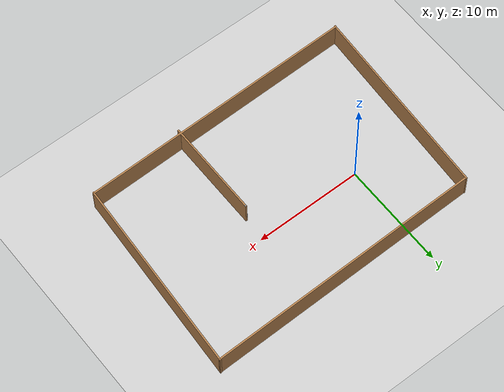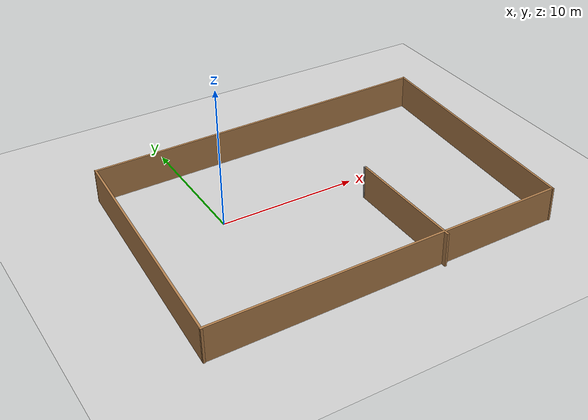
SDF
<sdf version="1.6">
 <world name="default">
  <light name="sun" type="directional">
   <pose>0 0 10 0 -0 0</pose>
   <diffuse>0.8 0.8 0.8 1</diffuse>
   <specular>0.2 0.2 0.2 1</specular>
   <attenuation>
    <range>1000</range>
    <constant>0.9</constant>
    <linear>0.01</linear>
    <quadratic>0.001</quadratic>
   </attenuation>
   <direction>-0.5 0.1 -0.9</direction>
  </light>
  <model name="ground_plane">
   <static>1</static>
   <link name="link">
    <collision name="collision">
     <geometry><plane><normal>0 0 1</normal><size>100 100</size></plane></geometry>
     <surface>
      <contact><collide_bitmask>65535</collide_bitmask></contact>
      <friction><ode><mu>100</mu><mu2>50</mu2></ode></friction>
     </surface>
    </collision>
    <visual name="visual">
     <cast_shadows>0</cast_shadows>
     <geometry><plane><normal>0 0 1</normal><size>100 100</size></plane></geometry>
     <material>
      <script><uri>file://media/materials/scripts/gazebo.material</uri><name>Gazebo/Grey</name></script>
     </material>
    </visual>
   </link>
  </model>
  <gravity>0 0 -9.8</gravity>
  <magnetic_field>6e-06 2.3e-05 -4.2e-05</magnetic_field>
  <atmosphere type="adiabatic"/>
  <physics name="default_physics" default="0" type="ode">
   <max_step_size>0.001</max_step_size>
   <real_time_factor>1</real_time_factor>
   <real_time_update_rate>1000</real_time_update_rate>
  </physics>
  <scene><ambient>0.4 0.4 0.4 1</ambient><background>0.7 0.7 0.7 1</background><shadows>1</shadows></scene>
  <audio><device>default</device></audio>
  <spherical_coordinates>
   <surface_model>EARTH_WGS84</surface_model>
   <latitude_deg>0</latitude_deg>
   <longitude_deg>0</longitude_deg>
   <elevation>0</elevation>
   <heading_deg>0</heading_deg>
  </spherical_coordinates>
  <model name="map">
   <pose>6.40174 -2.01071 0 0 -0 0</pose>
   <link name="Wall_10">
    <collision name="Wall_10_Collision">
     <geometry><box><size>9.25 0.15 2.5</size></box></geometry>
     <pose>0 0 1.25 0 -0 0</pose>
    </collision>
    <visual name="Wall_10_Visual">
     <pose>0 0 1.25 0 -0 0</pose>
     <geometry><box><size>9.25 0.15 2.5</size></box></geometry>
     <material>
      <script><uri>file://media/materials/scripts/gazebo.material</uri><name>Gazebo/Wood</name></script>
      <ambient>1 1 1 1</ambient>
     </material>
     <meta><layer>0</layer></meta>
    </visual>
    <pose>3.39738 -4.77834 0 0 -0 -1.5708</pose>
   </link>
   <link name="Wall_4">
    <collision name="Wall_4_Collision">
     <geometry><box><size>25.9665 0.15 2.5</size></box></geometry>
     <pose>0 0 1.25 0 -0 0</pose>
    </collision>
    <visual name="Wall_4_Visual">
     <pose>0 0 1.25 0 -0 0</pose>
     <geometry><box><size>25.9665 0.15 2.5</size></box></geometry>
     <material>
      <script><uri>file://media/materials/scripts/gazebo.material</uri><name>Gazebo/Wood</name></script>
      <ambient>1 1 1 1</ambient>
     </material>
     <meta><layer>0</layer></meta>
    </visual>
    <pose>0.482374 9.09967 0 0 -0 0.013826</pose>
   </link>
   <link name="Wall_5">
    <collision name="Wall_5_Collision">
     <geometry><box><size>18.4328 0.15 2.5</size></box></geometry>
     <pose>0 0 1.25 0 -0 0</pose>
    </collision>
    <visual name="Wall_5_Visual">
     <pose>0 0 1.25 0 -0 0</pose>
     <geometry><box><size>18.4328 0.15 2.5</size></box></geometry>
     <material>
      <script><uri>file://media/materials/scripts/gazebo.material</uri><name>Gazebo/Wood</name></script>
      <ambient>1 1 1 1</ambient>
     </material>
     <meta><layer>0</layer></meta>
    </visual>
    <pose>12.8937 0.196419 0 0 -0 -1.62504</pose>
   </link>
   <link name="Wall_6">
    <collision name="Wall_6_Collision">
     <geometry><box><size>25.94 0.15 2.5</size></box></geometry>
     <pose>0 0 1.25 0 -0 0</pose>
    </collision>
    <visual name="Wall_6_Visual">
     <pose>0 0 1.25 0 -0 0</pose>
     <geometry><box><size>25.94 0.15 2.5</size></box></geometry>
     <material>
      <script><uri>file://media/materials/scripts/gazebo.material</uri><name>Gazebo/Wood</name></script>
      <ambient>1 1 1 1</ambient>
     </material>
     <meta><layer>0</layer></meta>
    </visual>
    <pose>-0.495698 -9.06375 0 0 -0 -3.12775</pose>
   </link>
   <link name="Wall_7">
    <collision name="Wall_7_Collision">
     <geometry><box><size>18.4116 0.15 2.5</size></box></geometry>
     <pose>0 0 1.25 0 -0 0</pose>
    </collision>
    <visual name="Wall_7_Visual">
     <pose>0 0 1.25 0 -0 0</pose>
     <geometry><box><size>18.4116 0.15 2.5</size></box></geometry>
     <material>
      <script><uri>file://media/materials/scripts/gazebo.material</uri><name>Gazebo/Wood</name></script>
      <ambient>1 1 1 1</ambient>
     </material>
     <meta><layer>0</layer></meta>
    </visual>
    <pose>-12.9071 -0.170404 0 0 -0 1.51794</pose>
   </link>
   <link name="Wall_9">
    <collision name="Wall_9_Collision">
     <geometry><box><size>0.16 0.15 2.5</size></box></geometry>
     <pose>0 0 1.25 0 -0 0</pose>
    </collision>
    <visual name="Wall_9_Visual">
     <pose>0 0 1.25 0 -0 0</pose>
     <geometry><box><size>0.16 0.15 2.5</size></box></geometry>
     <material>
      <script><uri>file://media/materials/scripts/gazebo.material</uri><name>Gazebo/Grey</name></script>
      <ambient>1 1 1 1</ambient>
     </material>
     <meta><layer>0</layer></meta>
    </visual>
    <pose>3.39238 -0.228345 0 0 -0 0</pose>
   </link>
   <static>1</static>
  </model>
 </world>
</sdf>
